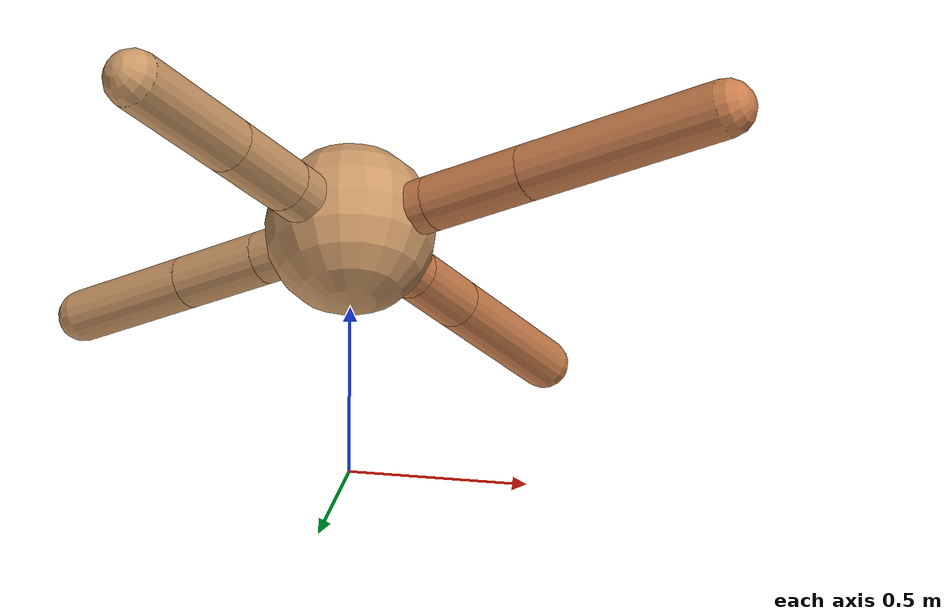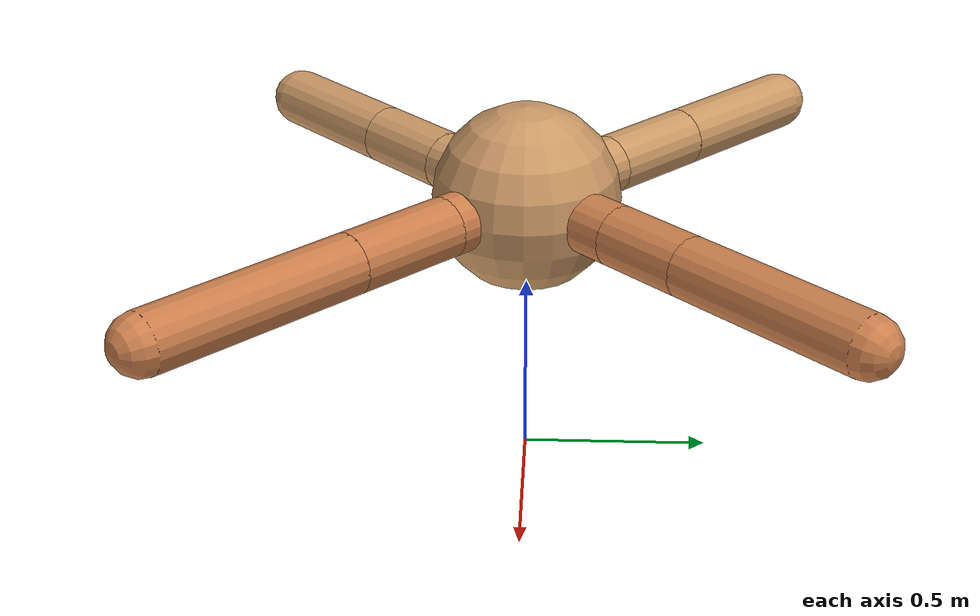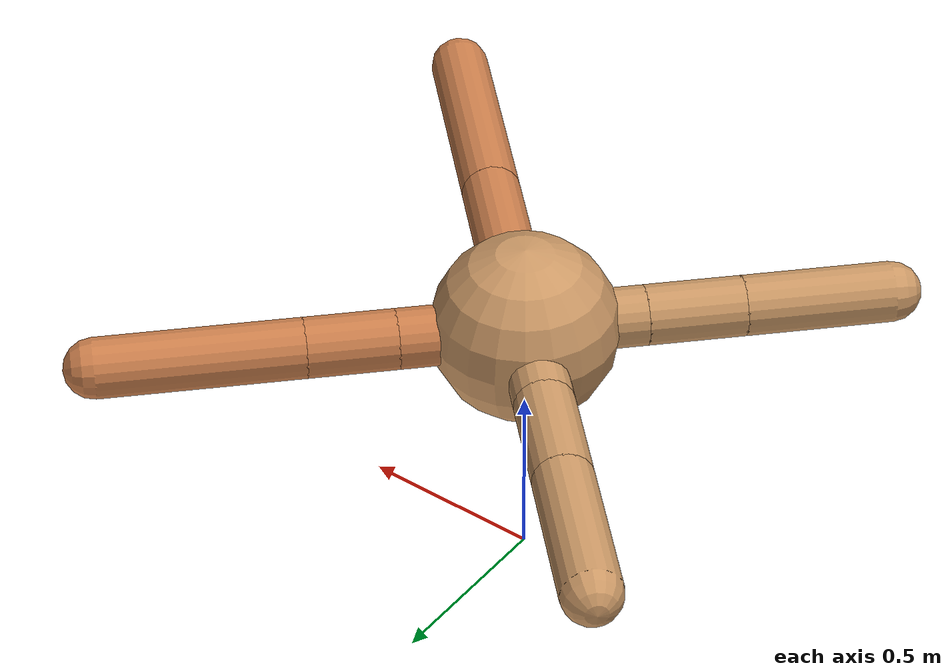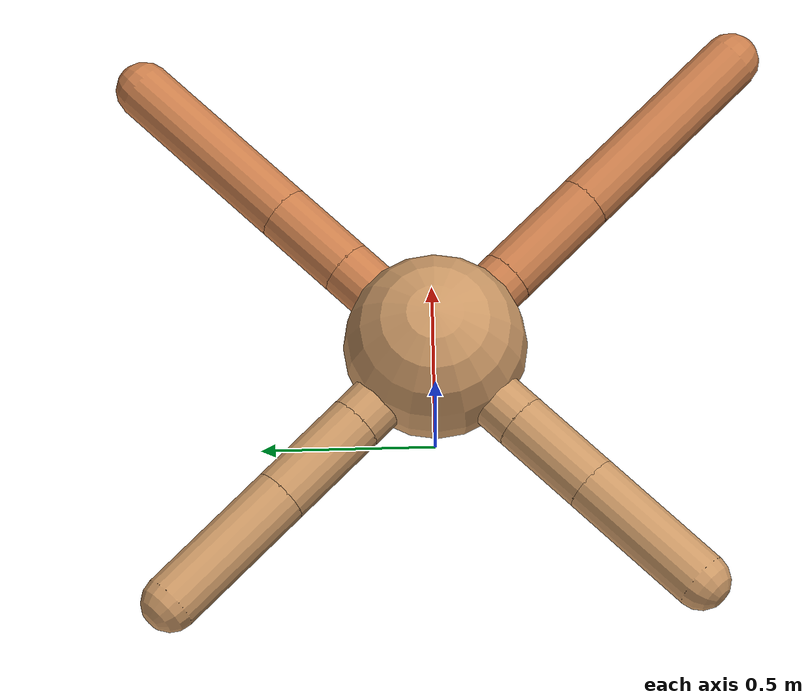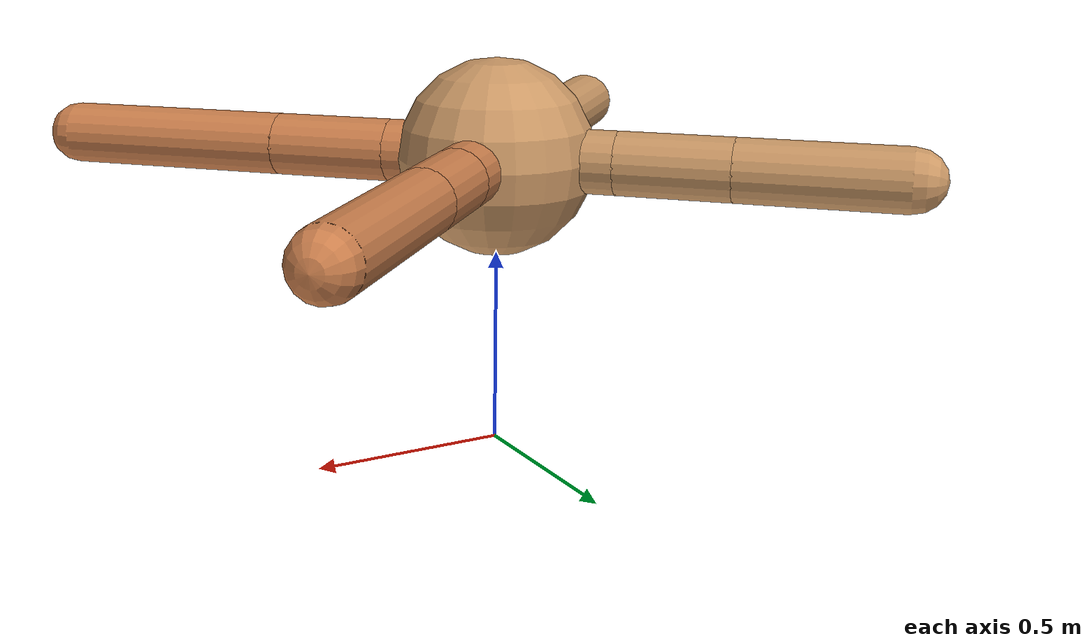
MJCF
<mujoco model="ant">
  <compiler angle="degree" coordinate="local" inertiafromgeom="true" />
  <option integrator="RK4" timestep="0.01" />
  <custom>
    <numeric data="0.0 0.0 0.55 1.0 0.0 0.0 0.0 0.0 1.0 0.0 -1.0 0.0 -1.0 0.0 1.0" name="init_qpos" />
  </custom>
  <default>
    <joint armature="1" damping="1" limited="true" />
    <geom conaffinity="0" condim="3" density="5.0" friction="1.5 0.1 0.1" margin="0.01" rgba="0.8 0.6 0.4 1" />
  </default>
  <worldbody>
    <body name="torso" pos="0 0 0.75">
      <geom name="torso_geom" pos="0 0 0" size="0.25" type="sphere" />

      <body name="front_left_leg" pos="0 0 0">
        <geom fromto="0.0 0.0 0.0 0.2361511139459093 0.2361511139459093 0.0" name="aux_1_geom" size="0.08" type="capsule" rgba=".8 .5 .3 1" />
        <body name="aux_1" pos="0.2361511139459093 0.2361511139459093 0.0">
          <joint axis="0 0 1" name="hip_1" pos="0.0 0.0 0.0" range="-40 40" type="hinge" />
          <geom fromto="0.0 0.0 0.0 0.1690984105562113 0.1690984105562113 0.0" name="left_leg_geom" size="0.08" type="capsule" rgba=".8 .5 .3 1" />
          <body pos="0.1690984105562113 0.1690984105562113 0.0" name="front_left_foot">
            <joint axis="-1 1 0" name="ankle_1" pos="0.0 0.0 0.0" range="30 100" type="hinge" />
            <geom fromto="0.0 0.0 0.0 0.38397213734060975 0.38397213734060975 0.0" name="left_ankle_geom" size="0.08" type="capsule" rgba=".8 .5 .3 1" />
          </body>
        </body>
      </body>
      <body name="front_right_leg" pos="0 0 0">
        <geom fromto="0.0 0.0 0.0 -0.21917132587504293 0.21917132587504293 0.0" name="aux_2_geom" size="0.08" type="capsule" />
        <body name="aux_2" pos="-0.21917132587504293 0.21917132587504293 0.0">
          <joint axis="0 0 1" name="hip_2" pos="0.0 0.0 0.0" range="-40 40" type="hinge" />
          <geom fromto="0.0 0.0 0.0 -0.20284795976001113 0.20284795976001113 0.0" name="right_leg_geom" size="0.08" type="capsule" />
          <body pos="-0.20284795976001113 0.20284795976001113 0.0" name="front_right_foot">
            <joint axis="1 1 0" name="ankle_2" pos="0.0 0.0 0.0" range="-100 -30" type="hinge" />
            <geom fromto="0.0 0.0 0.0 -0.293719033755244 0.293719033755244 0.0" name="right_ankle_geom" size="0.08" type="capsule" />
          </body>
        </body>
      </body>
      <body name="left_back_leg" pos="0 0 0">
        <geom fromto="0.0 0.0 0.0 -0.22422603444924483 -0.22422603444924483 0.0" name="aux_3_geom" size="0.08" type="capsule" />
        <body name="aux_3" pos="-0.22422603444924483 -0.22422603444924483 0.0">
          <joint axis="0 0 1" name="hip_3" pos="0.0 0.0 0.0" range="-40 40" type="hinge" />
          <geom fromto="0.0 0.0 0.0 -0.18313780467797117 -0.18313780467797117 0.0" name="back_leg_geom" size="0.08" type="capsule" />
          <body pos="-0.18313780467797117 -0.18313780467797117 0.0" name="left_back_foot">
            <joint axis="-1 1 0" name="ankle_3" pos="0.0 0.0 0.0" range="-100 -30" type="hinge" />
            <geom fromto="0.0 0.0 0.0 -0.2799854028484262 -0.2799854028484262 0.0" name="third_ankle_geom" size="0.08" type="capsule" />
          </body>
        </body>
      </body>
      <body name="right_back_leg" pos="0 0 0">
        <geom fromto="0.0 0.0 0.0 0.20005794065239746 -0.20005794065239746 0.0" name="aux_4_geom" size="0.08" type="capsule" rgba=".8 .5 .3 1" />
        <body name="aux_4" pos="0.20005794065239746 -0.20005794065239746 0.0">
          <joint axis="0 0 1" name="hip_4" pos="0.0 0.0 0.0" range="-40 40" type="hinge" />
          <geom fromto="0.0 0.0 0.0 0.2177941832701766 -0.2177941832701766 0.0" name="rightback_leg_geom" size="0.08" type="capsule" rgba=".8 .5 .3 1" />
          <body pos="0.2177941832701766 -0.2177941832701766 0.0" name="right_back_foot">
            <joint axis="1 1 0" name="ankle_4" pos="0.0 0.0 0.0" range="30 100" type="hinge" />
            <geom fromto="0.0 0.0 0.0 0.4226563296569332 -0.4226563296569332 0.0" name="fourth_ankle_geom" size="0.08" type="capsule" rgba=".8 .5 .3 1" />
          </body>
        </body>
      </body>
    </body>
  </worldbody>
  <actuator>
    <motor ctrllimited="true" ctrlrange="-1.0 1.0" joint="hip_4" gear="150" />
    <motor ctrllimited="true" ctrlrange="-1.0 1.0" joint="ankle_4" gear="150" />
    <motor ctrllimited="true" ctrlrange="-1.0 1.0" joint="hip_1" gear="150" />
    <motor ctrllimited="true" ctrlrange="-1.0 1.0" joint="ankle_1" gear="150" />
    <motor ctrllimited="true" ctrlrange="-1.0 1.0" joint="hip_2" gear="150" />
    <motor ctrllimited="true" ctrlrange="-1.0 1.0" joint="ankle_2" gear="150" />
    <motor ctrllimited="true" ctrlrange="-1.0 1.0" joint="hip_3" gear="150" />
    <motor ctrllimited="true" ctrlrange="-1.0 1.0" joint="ankle_3" gear="150" />
  </actuator>
</mujoco>
